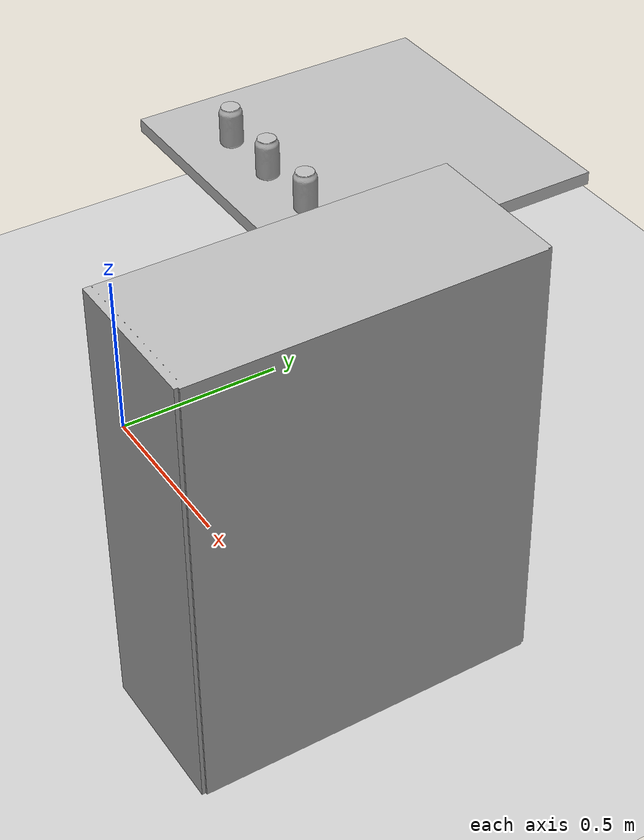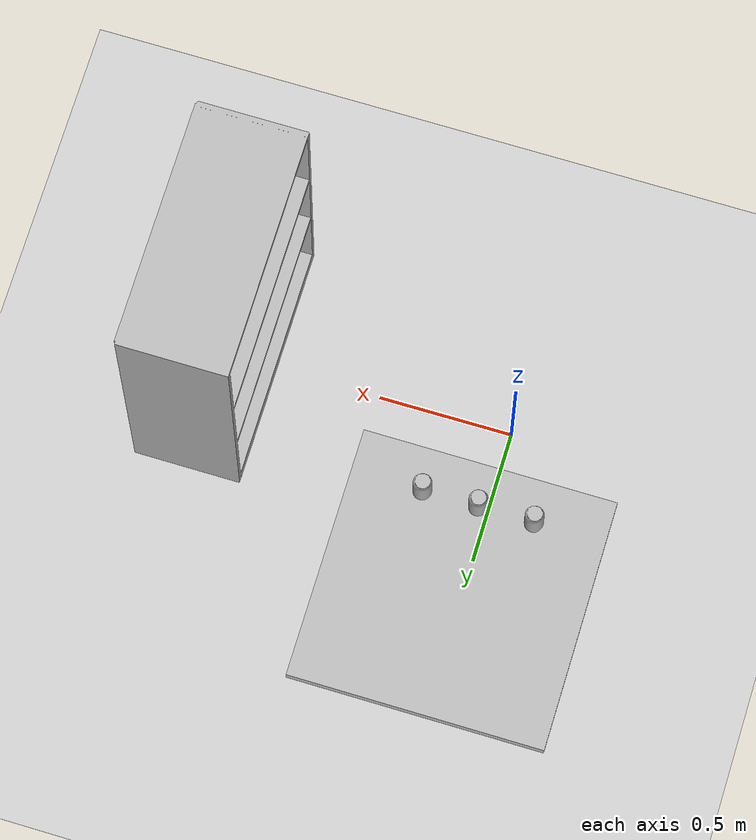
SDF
<sdf version='1.10'>
  <world name='jaco2_field'>

    <physics name='1ms' type='ignored'>
      <max_step_size>0.001</max_step_size>
      <real_time_factor>1</real_time_factor>
      <real_time_update_rate>1000</real_time_update_rate>
    </physics>

    <plugin name='gz::sim::systems::Physics' filename='gz-sim-physics-system'>
      <engine>
        <filename>gz-physics-bullet-featherstone-plugin</filename>
      </engine>
    </plugin>
    <plugin
      filename="gz-sim-sensors-system"
      name="gz::sim::systems::Sensors">
      <render_engine>ogre2</render_engine>
    </plugin>
    <plugin name='gz::sim::systems::UserCommands' filename='gz-sim-user-commands-system'/>
    <plugin name='gz::sim::systems::SceneBroadcaster' filename='gz-sim-scene-broadcaster-system'/>
    <plugin name='gz::sim::systems::Contact' filename='gz-sim-contact-system'/>

    <gravity>0 0 -9.8000000000000007</gravity>
    <magnetic_field>5.5644999999999998e-06 2.2875799999999999e-05 -4.2388400000000002e-05</magnetic_field>
    <atmosphere type='adiabatic'/>
    <scene>
      <ambient>0.400000006 0.400000006 0.400000006 1</ambient>
      <background>0.699999988 0.699999988 0.699999988 1</background>
      <shadows>true</shadows>
    </scene>

    <model name='ground_plane'>
      <static>true</static>
      <link name='ground'>
        <collision name='collision'>
          <geometry>
            <plane>
              <normal>0 0 1</normal>
              <size>100 100</size>
            </plane>
          </geometry>
          <surface>
            <friction>
              <ode/>
            </friction>
            <bounce/>
            <contact/>
          </surface>
        </collision>
        <visual name='visual'>
          <geometry>
            <plane>
              <normal>0 0 1</normal>
              <size>100 100</size>
            </plane>
          </geometry>
          <material>
            <ambient>0.800000012 0.800000012 0.800000012 1</ambient>
            <diffuse>0.800000012 0.800000012 0.800000012 1</diffuse>
            <specular>0.800000012 0.800000012 0.800000012 1</specular>
          </material>
        </visual>
        <pose>0 0 0 0 0 0</pose>
        <inertial>
          <pose>0 0 0 0 0 0</pose>
          <mass>1</mass>
          <inertia>
            <ixx>1</ixx>
            <ixy>0</ixy>
            <ixz>0</ixz>
            <iyy>1</iyy>
            <iyz>0</iyz>
            <izz>1</izz>
          </inertia>
        </inertial>
        <enable_wind>false</enable_wind>
      </link>
      <pose>0 0 0 0 0 0</pose>
      <self_collide>false</self_collide>
    </model>

    <model name='cafe_table'>
      <plugin filename="gz-sim-label-system" name="gz::sim::systems::Label">
        <label>20</label>
      </plugin>
      <static>true</static>
      <link name='cafe_table'>
        <collision name='surface'>
          <pose>0 0 0.755 0 0 0</pose>
          <geometry>
            <box>
              <size>0.91300000000000003 0.91300000000000003 0.040000000000000001</size>
            </box>
          </geometry>
          <surface>
            <friction>
              <ode/>
            </friction>
            <bounce/>
            <contact/>
          </surface>
        </collision>
        <collision name='column'>
          <pose>0 0 0.37 0 0 0</pose>
          <geometry>
            <box>
              <size>0.042000000000000003 0.042000000000000003 0.73999999999999999</size>
            </box>
          </geometry>
          <surface>
            <friction>
              <ode/>
            </friction>
            <bounce/>
            <contact/>
          </surface>
        </collision>
        <collision name='base'>
          <pose>0 0 0.02 0 0 0</pose>
          <geometry>
            <box>
              <size>0.56000000000000005 0.56000000000000005 0.040000000000000001</size>
            </box>
          </geometry>
          <surface>
            <friction>
              <ode/>
            </friction>
            <bounce/>
            <contact/>
          </surface>
        </collision>
        <visual name='visual'>
          <geometry>
            <mesh>
              <uri> model://cafe_table/meshes/cafe_table.dae</uri>
            </mesh>
          </geometry>
        </visual>
        <pose>0 0 0 0 0 0</pose>
        <inertial>
          <pose>0 0 0 0 0 0</pose>
          <mass>1</mass>
          <inertia>
            <ixx>1</ixx>
            <ixy>0</ixy>
            <ixz>0</ixz>
            <iyy>1</iyy>
            <iyz>0</iyz>
            <izz>1</izz>
          </inertia>
        </inertial>
        <enable_wind>false</enable_wind>
      </link>
      <pose>0 0.80000000000000004 -0.10000000000000001 0 0 0</pose>
      <self_collide>false</self_collide>
    </model>

    <model name='coke_can_right'>
      <plugin filename="gz-sim-label-system" name="gz::sim::systems::Label">
        <label>5</label>
      </plugin>
      <link name='can_right'>
        <inertial>
          <pose>0 0 0.059999999999999998 0 0 0</pose>
          <mass>0.39000000000000001</mass>
          <inertia>
            <ixx>0.00055575000000000004</ixx>
            <ixy>0</ixy>
            <ixz>0</ixz>
            <iyy>0.00055575000000000004</iyy>
            <iyz>0</iyz>
            <izz>0.00017550000000000001</izz>
          </inertia>
        </inertial>
        <collision name='collision'>
          <pose>0.0039370000000000004 0.0047244000000000001 -0.17999999999999999 0 0 0</pose>
          <geometry>
            <mesh>
              <uri>model://coke_can/meshes/coke_can.dae</uri>
            </mesh>
          </geometry>
          <surface>
            <friction>
              <ode>
                <mu>1</mu>
                <mu2>1</mu2>
              </ode>
            </friction>
            <contact>
              <ode>
                <kp>10000000</kp>
                <kd>1</kd>
                <min_depth>0.001</min_depth>
                <max_vel>0.10000000000000001</max_vel>
              </ode>
            </contact>
          </surface>
        </collision>
        <visual name='visual'>
          <pose>0.0039370000000000004 0.0047244000000000001 -0.17999999999999999 0 0 0</pose>
          <geometry>
            <mesh>
              <uri>model://coke_can/meshes/coke_can.dae</uri>
            </mesh>
          </geometry>
        </visual>
        <pose>0 0 0 0 0 0</pose>
        <enable_wind>false</enable_wind>
      </link>
      <pose>-0.20000000000000001 0.5 0.67000000000000004 0 0 0</pose>
      <static>false</static>
      <self_collide>false</self_collide>
    </model>

    <model name='coke_can_left'>
      <plugin filename="gz-sim-label-system" name="gz::sim::systems::Label">
        <label>7</label>
      </plugin>
      <link name='can_left'>
        <inertial>
          <pose>0 0 0.059999999999999998 0 0 0</pose>
          <mass>0.39000000000000001</mass>
          <inertia>
            <ixx>0.00055575000000000004</ixx>
            <ixy>0</ixy>
            <ixz>0</ixz>
            <iyy>0.00055575000000000004</iyy>
            <iyz>0</iyz>
            <izz>0.00017550000000000001</izz>
          </inertia>
        </inertial>
        <collision name='collision'>
          <pose>0.0039370000000000004 0.0047244000000000001 -0.17999999999999999 0 0 0</pose>
          <geometry>
            <mesh>
              <uri>model://coke_can/meshes/coke_can.dae</uri>
            </mesh>
          </geometry>
          <surface>
            <friction>
              <ode>
                <mu>1</mu>
                <mu2>1</mu2>
              </ode>
            </friction>
            <contact>
              <ode>
                <kp>10000000</kp>
                <kd>1</kd>
                <min_depth>0.001</min_depth>
                <max_vel>0.10000000000000001</max_vel>
              </ode>
            </contact>
          </surface>
        </collision>
        <visual name='visual'>
          <pose>0.0039370000000000004 0.0047244000000000001 -0.17999999999999999 0 0 0</pose>
          <geometry>
            <mesh>
              <uri>model://coke_can/meshes/coke_can.dae</uri>
            </mesh>
          </geometry>
        </visual>
        <pose>0 0 0 0 0 0</pose>
        <enable_wind>false</enable_wind>
      </link>
      <pose>0.20000000000000001 0.5 0.67000000000000004 0 0 0</pose>
      <static>false</static>
      <self_collide>false</self_collide>
    </model>

    <model name='coke_can_middle'>
      <plugin filename="gz-sim-label-system" name="gz::sim::systems::Label">
        <label>6</label>
      </plugin>
      <link name='can_middle'>
        <inertial>
          <pose>0 0 0.059999999999999998 0 0 0</pose>
          <mass>0.39000000000000001</mass>
          <inertia>
            <ixx>0.00055575000000000004</ixx>
            <ixy>0</ixy>
            <ixz>0</ixz>
            <iyy>0.00055575000000000004</iyy>
            <iyz>0</iyz>
            <izz>0.00017550000000000001</izz>
          </inertia>
        </inertial>
        <collision name='collision'>
          <pose>0.0039370000000000004 0.0047244000000000001 -0.17999999999999999 0 0 0</pose>
          <geometry>
            <mesh>
              <uri>model://coke_can/meshes/coke_can.dae</uri>
            </mesh>
          </geometry>
          <surface>
            <friction>
              <ode>
                <mu>1</mu>
                <mu2>1</mu2>
              </ode>
            </friction>
            <contact>
              <ode>
                <kp>10000000</kp>
                <kd>1</kd>
                <min_depth>0.001</min_depth>
                <max_vel>0.10000000000000001</max_vel>
              </ode>
            </contact>
          </surface>
        </collision>
        <visual name='visual'>
          <pose>0.0039370000000000004 0.0047244000000000001 -0.17999999999999999 0 0 0</pose>
          <geometry>
            <mesh>
              <uri>model://coke_can/meshes/coke_can.dae</uri>
            </mesh>
          </geometry>
        </visual>
        <pose>0 0 0 0 0 0</pose>
        <enable_wind>false</enable_wind>
      </link>
      <pose>0 0.5 0.67000000000000004 0 0 0</pose>
      <static>false</static>
      <self_collide>false</self_collide>
    </model>

    <!-- Book Self -->
    <model name='bookshelf'>
      <plugin filename="gz-sim-label-system" name="gz::sim::systems::Label">
        <label>10</label>
      </plugin>
      <static>true</static>
      <link name='bookshelf'>
        <inertial>
          <mass>1</mass>
          <pose>0 0 0 0 0 0</pose>
          <inertia>
            <ixx>1</ixx>
            <ixy>0</ixy>
            <ixz>0</ixz>
            <iyy>1</iyy>
            <iyz>0</iyz>
            <izz>1</izz>
          </inertia>
        </inertial>
        <collision name='back'>
          <pose>0 0.0050000000000000001 0.59999999999999998 0 0 0</pose>
          <geometry>
            <box>
              <size>0.90000000000000002 0.01 1.2</size>
            </box>
          </geometry>
          <surface>
            <friction>
              <ode/>
            </friction>
            <bounce/>
            <contact/>
          </surface>
        </collision>
        <visual name='visual'>
          <pose>0 0.0050000000000000001 0.0 0 0 0</pose>
          <geometry>
            <mesh>
              <uri>model://bookshelf/meshes/bookshelf.dae</uri>
            </mesh>
          </geometry>
        </visual>
        <collision name='left_side'>
          <pose>0.45000000000000001 -0.19500000000000001 0.59999999999999998 0 0 0</pose>
          <geometry>
            <box>
              <size>0.02 0.40000000000000002 1.2</size>
            </box>
          </geometry>
          <surface>
            <friction>
              <ode/>
            </friction>
            <bounce/>
            <contact/>
          </surface>
        </collision>
        <collision name='right_side'>
          <pose>-0.45000000000000001 -0.19500000000000001 0.59999999999999998 0 0 0</pose>
          <geometry>
            <box>
              <size>0.02 0.40000000000000002 1.2</size>
            </box>
          </geometry>
          <surface>
            <friction>
              <ode/>
            </friction>
            <bounce/>
            <contact/>
          </surface>
        </collision>
        <collision name='bottom'>
          <pose>0 -0.19500000000000001 0.029999999999999999 0 0 0</pose>
          <geometry>
            <box>
              <size>0.88 0.40000000000000002 0.059999999999999998</size>
            </box>
          </geometry>
          <surface>
            <friction>
              <ode/>
            </friction>
            <bounce/>
            <contact/>
          </surface>
        </collision>
        <collision name='top'>
          <pose>0 -0.19500000000000001 1.1899999999999999 0 0 0</pose>
          <geometry>
            <box>
              <size>0.88 0.40000000000000002 0.02</size>
            </box>
          </geometry>
          <surface>
            <friction>
              <ode/>
            </friction>
            <bounce/>
            <contact/>
          </surface>
        </collision>
        <collision name='low_shelf'>
          <pose>0 -0.19500000000000001 0.42999999999999999 0 0 0</pose>
          <geometry>
            <box>
              <size>0.88 0.40000000000000002 0.02</size>
            </box>
          </geometry>
          <surface>
            <friction>
              <ode/>
            </friction>
            <bounce/>
            <contact/>
          </surface>
        </collision>
        <collision name='high_shelf'>
          <pose>0 -0.19500000000000001 0.80000000000000004 0 0 0</pose>
          <geometry>
            <box>
              <size>0.88 0.40000000000000002 0.02</size>
            </box>
          </geometry>
          <surface>
            <friction>
              <ode/>
            </friction>
            <bounce/>
            <contact/>
          </surface>
        </collision>

        <pose>0 0 0 0 0 0</pose>
        <enable_wind>false</enable_wind>
      </link>
      <pose>1.1000000000000001 0 0 0 0 1.5700000000000001</pose>
      <self_collide>false</self_collide>
    </model>

    <light name='sun' type='directional'>
      <pose>0 0 10 0 0 0</pose>
      <cast_shadows>true</cast_shadows>
      <intensity>1</intensity>
      <direction>0.500000000000000001 0.10000000000000001 -0.90000000000000002</direction>
      <diffuse>0.800000012 0.800000012 0.800000012 1</diffuse>
      <specular>0.200000003 0.200000003 0.200000003 1</specular>
      <attenuation>
        <range>1000</range>
        <linear>0.01</linear>
        <constant>0.90000000000000002</constant>
        <quadratic>0.001</quadratic>
      </attenuation>
      <spot>
        <inner_angle>0</inner_angle>
        <outer_angle>0</outer_angle>
        <falloff>0</falloff>
      </spot>
    </light>

  </world>
</sdf>
